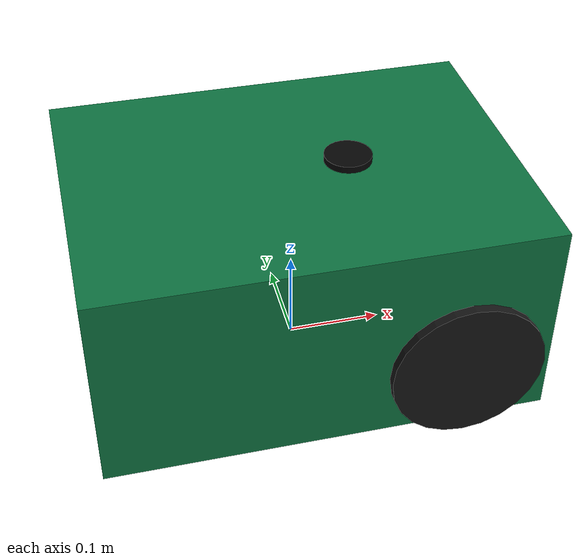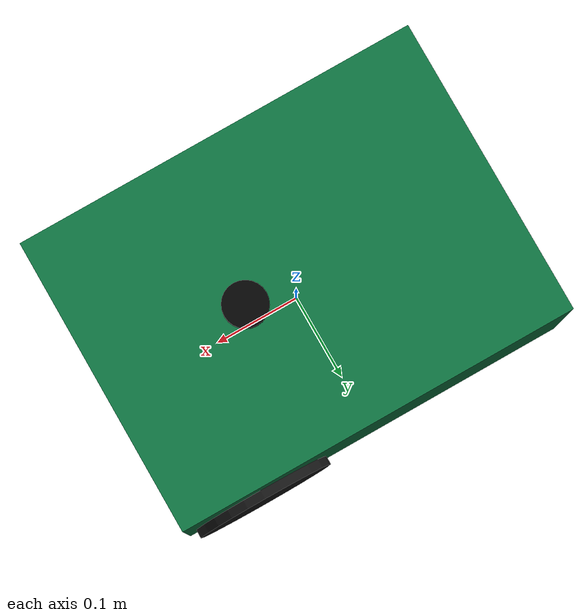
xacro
<?xml version="1.0"?>
<robot name="smart_rover" xmlns:xacro="http://www.ros.org/wiki/xacro">

  <material name="green_metal">
    <color rgba="0.05 0.45 0.25 1.0"/>
  </material>
  <material name="tire_black">
    <color rgba="0.08 0.08 0.08 1.0"/>
  </material>
  <material name="caster_grey">
    <color rgba="0.25 0.25 0.25 1.0"/>
  </material>
  <material name="sensor_black">
    <color rgba="0.02 0.02 0.02 1.0"/>
  </material>
  <material name="sensor_glass">
    <color rgba="0.25 0.25 0.25 0.35"/>
  </material>

  <xacro:macro name="inertia_box" params="mass x y z">
    <inertia ixx="${(1/12) * mass * (y*y + z*z)}"
             ixy="0" ixz="0"
             iyy="${(1/12) * mass * (x*x + z*z)}"
             iyz="0"
             izz="${(1/12) * mass * (x*x + y*y)}"/>
  </xacro:macro>

  <xacro:macro name="inertia_cylinder_y" params="mass r l">
    <inertia ixx="${(1/12) * mass * (3*r*r + l*l)}"
             ixy="0" ixz="0"
             iyy="${0.5 * mass * r*r}"
             iyz="0"
             izz="${(1/12) * mass * (3*r*r + l*l)}"/>
  </xacro:macro>

  <link name="base_link">
    <inertial>
      <mass value="1.6"/>
      <origin xyz="0 0 0.11"/>
      <xacro:inertia_box mass="1.6" x="0.46" y="0.34" z="0.22"/>
    </inertial>
    <visual>
      <origin xyz="0 0 0.11"/>
      <geometry>
        <box size="0.46 0.34 0.22"/>
      </geometry>
      <material name="green_metal"/>
    </visual>
    <collision>
      <origin xyz="0 0 0.09"/>
      <geometry>
        <box size="0.46 0.34 0.18"/>
      </geometry>
    </collision>
  </link>

  <link name="left_wheel_link">
    <inertial>
      <mass value="0.25"/>
      <origin xyz="0 0 0"/>
      <xacro:inertia_cylinder_y mass="0.25" r="0.08" l="0.04"/>
    </inertial>
    <visual>
      <origin xyz="0 0 0" rpy="${-pi/2} 0 0"/>
      <geometry>
        <cylinder radius="0.08" length="0.04"/>
      </geometry>
      <material name="tire_black"/>
    </visual>
    <collision>
      <origin xyz="0 0 0" rpy="${-pi/2} 0 0"/>
      <geometry>
        <cylinder radius="0.08" length="0.04"/>
      </geometry>
    </collision>
  </link>

  <joint name="left_wheel_joint" type="continuous">
    <parent link="base_link"/>
    <child link="left_wheel_link"/>
    <origin xyz="0.14 0.16 0.07" rpy="0 0 0"/>
    <axis xyz="0 1 0"/>
    <limit effort="12" velocity="12"/>
    <dynamics damping="0.1" friction="0.01"/>
  </joint>

  <link name="right_wheel_link">
    <inertial>
      <mass value="0.25"/>
      <origin xyz="0 0 0"/>
      <xacro:inertia_cylinder_y mass="0.25" r="0.08" l="0.04"/>
    </inertial>
    <visual>
      <origin xyz="0 0 0" rpy="${-pi/2} 0 0"/>
      <geometry>
        <cylinder radius="0.08" length="0.04"/>
      </geometry>
      <material name="tire_black"/>
    </visual>
    <collision>
      <origin xyz="0 0 0" rpy="${-pi/2} 0 0"/>
      <geometry>
        <cylinder radius="0.08" length="0.04"/>
      </geometry>
    </collision>
  </link>

  <joint name="right_wheel_joint" type="continuous">
    <parent link="base_link"/>
    <child link="right_wheel_link"/>
    <origin xyz="0.14 -0.16 0.07" rpy="0 0 0"/>
    <axis xyz="0 1 0"/>
    <limit effort="12" velocity="12"/>
    <dynamics damping="0.1" friction="0.01"/>
  </joint>

  <xacro:macro name="inertia_sphere" params="mass r">
    <inertia ixx="${(2/5) * mass * r*r}"
             ixy="0" ixz="0"
             iyy="${(2/5) * mass * r*r}"
             iyz="0"
             izz="${(2/5) * mass * r*r}"/>
  </xacro:macro>

  <link name="caster_wheel_link">
    <inertial>
      <mass value="0.12"/>
      <origin xyz="0 0 0"/>
      <xacro:inertia_sphere mass="0.12" r="0.045"/>
    </inertial>
    <visual>
      <geometry>
        <sphere radius="0.045"/>
      </geometry>
      <material name="caster_grey"/>
    </visual>
    <collision>
      <geometry>
        <sphere radius="0.045"/>
      </geometry>
    </collision>
  </link>

  <joint name="caster_wheel_joint" type="continuous">
    <parent link="base_link"/>
    <child link="caster_wheel_link"/>
    <origin xyz="-0.14 0 0.045" rpy="0 0 0"/>
    <axis xyz="0 1 0"/>
    <limit effort="1" velocity="10"/>
    <dynamics damping="0.01" friction="0.001"/>
  </joint>

  <link name="laser_link">
    <inertial>
      <mass value="0.1"/>
      <origin xyz="0 0 0"/>
      <inertia ixx="0.0001" ixy="0" ixz="0"
               iyy="0.0001" iyz="0"
               izz="0.0001"/>
    </inertial>
    <visual>
      <origin xyz="0 0 0"/>
      <geometry>
        <cylinder radius="0.025" length="0.015"/>
      </geometry>
      <material name="sensor_black"/>
    </visual>
    <collision>
      <origin xyz="0 0 0"/>
      <geometry>
        <cylinder radius="0.025" length="0.015"/>
      </geometry>
    </collision>
  </link>

  <joint name="laser_joint" type="fixed">
    <parent link="base_link"/>
    <child link="laser_link"/>
    <origin xyz="0.06 0 0.22" rpy="0 0 0"/>
  </joint>

  <gazebo>
    <plugin name="gazebo_ros_diff_drive" filename="libgazebo_ros_diff_drive.so">
      <ros>
        <namespace>/</namespace>
      </ros>
      <left_joint>left_wheel_joint</left_joint>
      <right_joint>right_wheel_joint</right_joint>
      <wheel_separation>0.32</wheel_separation>
      <wheel_diameter>0.16</wheel_diameter>
      <max_wheel_torque>25</max_wheel_torque>
      <max_wheel_acceleration>12</max_wheel_acceleration>
      <command_topic>/cmd_vel</command_topic>
      <publish_odom>true</publish_odom>
      <publish_odom_tf>true</publish_odom_tf>
      <odometry_frame>odom</odometry_frame>
      <robot_base_frame>base_link</robot_base_frame>
      <p_gain>85.0</p_gain>
      <i_gain>8.0</i_gain>
      <d_gain>1.2</d_gain>
      <publish_wheel_joint_odom>true</publish_wheel_joint_odom>
    </plugin>
  </gazebo>

  <gazebo>
    <plugin name="gazebo_ros_joint_state_publisher" filename="libgazebo_ros_joint_state_publisher.so">
      <ros>
        <namespace>/</namespace>
      </ros>
      <joint_name>left_wheel_joint</joint_name>
      <joint_name>right_wheel_joint</joint_name>
      <joint_name>caster_wheel_joint</joint_name>
      <update_rate>50</update_rate>
    </plugin>
  </gazebo>

  <gazebo reference="laser_link">
    <sensor type="ray" name="lidar_sensor">
      <pose>0 0 0 0 0 0</pose>
      <visualize>true</visualize>
      <update_rate>30</update_rate>
      <ray>
        <scan>
          <horizontal>
            <samples>480</samples>
            <resolution>1</resolution>
            <min_angle>${-pi}</min_angle>
            <max_angle>${pi}</max_angle>
          </horizontal>
        </scan>
        <range>
          <min>0.1</min>
          <max>4.0</max>
          <resolution>0.01</resolution>
        </range>
        <noise>
          <type>gaussian</type>
          <mean>0.0</mean>
          <stddev>0.002</stddev>
        </noise>
      </ray>
      <plugin name="gazebo_ros_lidar" filename="libgazebo_ros_ray_sensor.so">
        <ros>
          <namespace>/</namespace>
          <argument>~/out:=/scan</argument>
        </ros>
        <output_type>sensor_msgs/LaserScan</output_type>
        <frame_name>laser_link</frame_name>
      </plugin>
    </sensor>
  </gazebo>

  <gazebo reference="base_link">
    <material>Gazebo/GreenMetal</material>
    <mu1>0.8</mu1>
    <mu2>0.8</mu2>
  </gazebo>
  <gazebo reference="left_wheel_link">
    <material>Gazebo/DarkGrey</material>
    <mu1>1.5</mu1>
    <mu2>1.5</mu2>
  </gazebo>
  <gazebo reference="right_wheel_link">
    <material>Gazebo/DarkGrey</material>
    <mu1>1.5</mu1>
    <mu2>1.5</mu2>
  </gazebo>

</robot>
